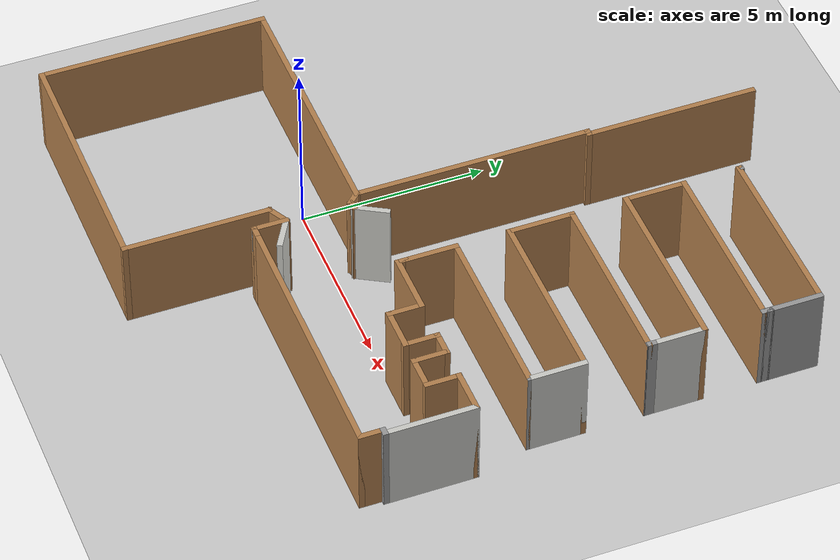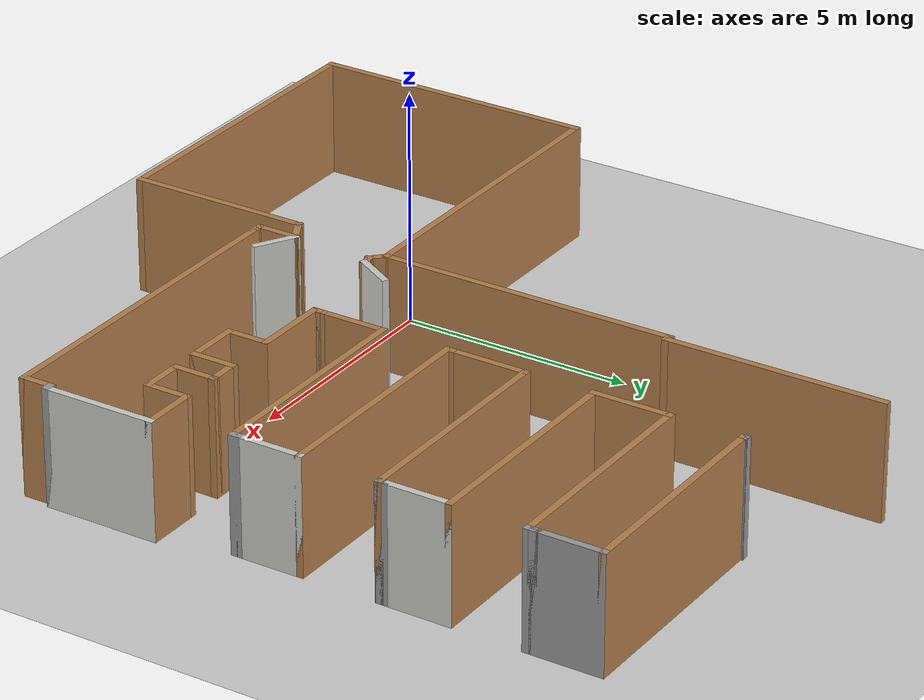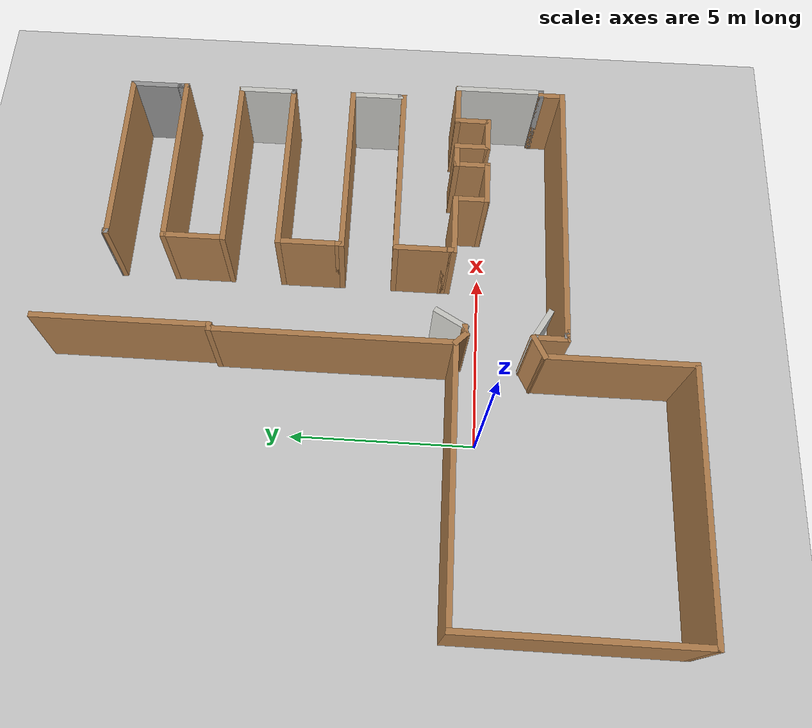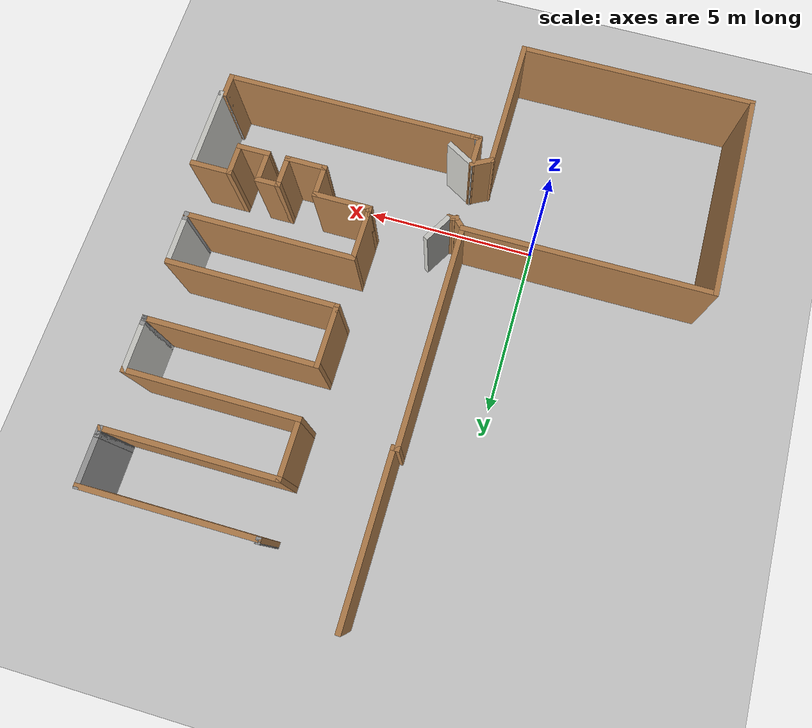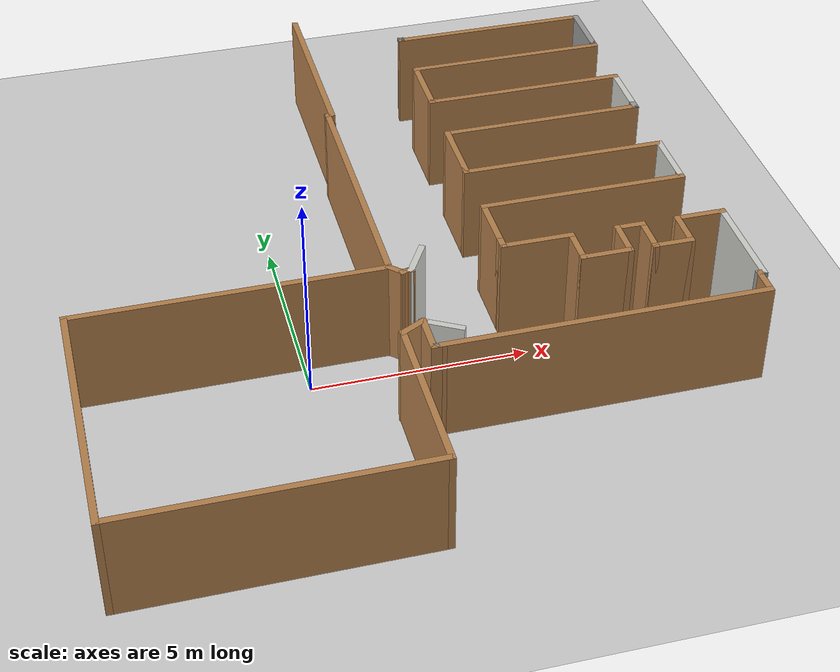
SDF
<sdf version="1.6">
 <world name="default">
  <model name="ground_plane">
   <static>1</static>
   <link name="link">
    <collision name="collision">
     <geometry><plane><normal>0 0 1</normal><size>100 100</size></plane></geometry>
     <surface>
      <contact><collide_bitmask>65535</collide_bitmask></contact>
      <friction><ode><mu>100</mu><mu2>50</mu2></ode></friction>
     </surface>
    </collision>
    <visual name="visual">
     <cast_shadows>0</cast_shadows>
     <geometry><plane><normal>0 0 1</normal><size>100 100</size></plane></geometry>
     <material>
      <script><uri>file://media/materials/scripts/gazebo.material</uri><name>Gazebo/Grey</name></script>
     </material>
    </visual>
   </link>
  </model>
  <model name="ecst_lab_v2">
   <pose>2.40126 7.41042 0 0 -0 -1.57079</pose>
   <link name="Wall_10">
    <collision name="Wall_10_Collision">
     <geometry><box><size>1.5 0.15 2.5</size></box></geometry>
     <pose>0 0 1.25 0 -0 0</pose>
    </collision>
    <visual name="Wall_10_Visual">
     <pose>0 0 1.25 0 -0 0</pose>
     <geometry><box><size>1.5 0.15 2.5</size></box></geometry>
     <material>
      <script><uri>file://media/materials/scripts/gazebo.material</uri><name>Gazebo/Grey</name></script>
      <ambient>1 1 1 1</ambient>
     </material>
     <meta><layer>0</layer></meta>
    </visual>
    <pose>-2.09801 7.10227 0 0 -0 0</pose>
   </link>
   <link name="Wall_11">
    <collision name="Wall_11_Collision">
     <geometry><box><size>0.15 0.15 2.5</size></box></geometry>
     <pose>0 0 1.25 0 -0 0</pose>
    </collision>
    <visual name="Wall_11_Visual">
     <pose>0 0 1.25 0 -0 0</pose>
     <geometry><box><size>0.15 0.15 2.5</size></box></geometry>
     <material>
      <script><uri>file://media/materials/scripts/gazebo.material</uri><name>Gazebo/Grey</name></script>
      <ambient>1 1 1 1</ambient>
     </material>
     <meta><layer>0</layer></meta>
    </visual>
    <pose>-1.42301 7.10227 0 0 -0 0</pose>
   </link>
   <link name="Wall_12">
    <collision name="Wall_12_Collision">
     <geometry><box><size>0.16 0.15 2.5</size></box></geometry>
     <pose>0 0 1.25 0 -0 0</pose>
    </collision>
    <visual name="Wall_12_Visual">
     <pose>0 0 1.25 0 -0 0</pose>
     <geometry><box><size>0.16 0.15 2.5</size></box></geometry>
     <material>
      <script><uri>file://media/materials/scripts/gazebo.material</uri><name>Gazebo/Grey</name></script>
      <ambient>1 1 1 1</ambient>
     </material>
     <meta><layer>0</layer></meta>
    </visual>
    <pose>-1.41801 7.10227 0 0 -0 0</pose>
   </link>
   <link name="Wall_13">
    <collision name="Wall_13_Collision">
     <geometry><box><size>0.16 0.15 2.5</size></box></geometry>
     <pose>0 0 1.25 0 -0 0</pose>
    </collision>
    <visual name="Wall_13_Visual">
     <pose>0 0 1.25 0 -0 0</pose>
     <geometry><box><size>0.16 0.15 2.5</size></box></geometry>
     <material>
      <script><uri>file://media/materials/scripts/gazebo.material</uri><name>Gazebo/Grey</name></script>
      <ambient>1 1 1 1</ambient>
     </material>
     <meta><layer>0</layer></meta>
    </visual>
    <pose>-1.40801 7.10227 0 0 -0 0</pose>
   </link>
   <link name="Wall_14">
    <collision name="Wall_14_Collision">
     <geometry><box><size>0.16 0.15 2.5</size></box></geometry>
     <pose>0 0 1.25 0 -0 0</pose>
    </collision>
    <visual name="Wall_14_Visual">
     <pose>0 0 1.25 0 -0 0</pose>
     <geometry><box><size>0.16 0.15 2.5</size></box></geometry>
     <material>
      <script><uri>file://media/materials/scripts/gazebo.material</uri><name>Gazebo/Grey</name></script>
      <ambient>1 1 1 1</ambient>
     </material>
     <meta><layer>0</layer></meta>
    </visual>
    <pose>-1.39801 7.10227 0 0 -0 0</pose>
   </link>
   <link name="Wall_15">
    <collision name="Wall_15_Collision">
     <geometry><box><size>0.16 0.15 2.5</size></box></geometry>
     <pose>0 0 1.25 0 -0 0</pose>
    </collision>
    <visual name="Wall_15_Visual">
     <pose>0 0 1.25 0 -0 0</pose>
     <geometry><box><size>0.16 0.15 2.5</size></box></geometry>
     <material>
      <script><uri>file://media/materials/scripts/gazebo.material</uri><name>Gazebo/Grey</name></script>
      <ambient>1 1 1 1</ambient>
     </material>
     <meta><layer>0</layer></meta>
    </visual>
    <pose>-1.38801 7.10227 0 0 -0 0</pose>
   </link>
   <link name="Wall_16">
    <collision name="Wall_16_Collision">
     <geometry><box><size>0.16 0.15 2.5</size></box></geometry>
     <pose>0 0 1.25 0 -0 0</pose>
    </collision>
    <visual name="Wall_16_Visual">
     <pose>0 0 1.25 0 -0 0</pose>
     <geometry><box><size>0.16 0.15 2.5</size></box></geometry>
     <material>
      <script><uri>file://media/materials/scripts/gazebo.material</uri><name>Gazebo/Grey</name></script>
      <ambient>1 1 1 1</ambient>
     </material>
     <meta><layer>0</layer></meta>
    </visual>
    <pose>-1.37801 7.10227 0 0 -0 0</pose>
   </link>
   <link name="Wall_17">
    <collision name="Wall_17_Collision">
     <geometry><box><size>0.16 0.15 2.5</size></box></geometry>
     <pose>0 0 1.25 0 -0 0</pose>
    </collision>
    <visual name="Wall_17_Visual">
     <pose>0 0 1.25 0 -0 0</pose>
     <geometry><box><size>0.16 0.15 2.5</size></box></geometry>
     <material>
      <script><uri>file://media/materials/scripts/gazebo.material</uri><name>Gazebo/Grey</name></script>
      <ambient>1 1 1 1</ambient>
     </material>
     <meta><layer>0</layer></meta>
    </visual>
    <pose>-1.36801 7.10227 0 0 -0 0</pose>
   </link>
   <link name="Wall_18">
    <collision name="Wall_18_Collision">
     <geometry><box><size>0.16 0.15 2.5</size></box></geometry>
     <pose>0 0 1.25 0 -0 0</pose>
    </collision>
    <visual name="Wall_18_Visual">
     <pose>0 0 1.25 0 -0 0</pose>
     <geometry><box><size>0.16 0.15 2.5</size></box></geometry>
     <material>
      <script><uri>file://media/materials/scripts/gazebo.material</uri><name>Gazebo/Grey</name></script>
      <ambient>1 1 1 1</ambient>
     </material>
     <meta><layer>0</layer></meta>
    </visual>
    <pose>-1.35801 7.10227 0 0 -0 0</pose>
   </link>
   <link name="Wall_19">
    <collision name="Wall_19_Collision">
     <geometry><box><size>0.16 0.15 2.5</size></box></geometry>
     <pose>0 0 1.25 0 -0 0</pose>
    </collision>
    <visual name="Wall_19_Visual">
     <pose>0 0 1.25 0 -0 0</pose>
     <geometry><box><size>0.16 0.15 2.5</size></box></geometry>
     <material>
      <script><uri>file://media/materials/scripts/gazebo.material</uri><name>Gazebo/Grey</name></script>
      <ambient>1 1 1 1</ambient>
     </material>
     <meta><layer>0</layer></meta>
    </visual>
    <pose>-1.34801 7.10227 0 0 -0 0</pose>
   </link>
   <link name="Wall_20">
    <collision name="Wall_20_Collision">
     <geometry><box><size>0.25 0.15 2.5</size></box></geometry>
     <pose>0 0 1.25 0 -0 0</pose>
    </collision>
    <visual name="Wall_20_Visual">
     <pose>0 0 1.25 0 -0 0</pose>
     <geometry><box><size>0.25 0.15 2.5</size></box></geometry>
     <material>
      <script><uri>file://media/materials/scripts/gazebo.material</uri><name>Gazebo/Grey</name></script>
      <ambient>1 1 1 1</ambient>
     </material>
     <meta><layer>0</layer></meta>
    </visual>
    <pose>-1.29301 7.10227 0 0 -0 0</pose>
   </link>
   <link name="Wall_21">
    <collision name="Wall_21_Collision">
     <geometry><box><size>5 0.15 2.5</size></box></geometry>
     <pose>0 0 1.25 0 -0 0</pose>
    </collision>
    <visual name="Wall_21_Visual">
     <pose>0 0 1.25 0 -0 0</pose>
     <geometry><box><size>5 0.15 2.5</size></box></geometry>
     <material>
      <script><uri>file://media/materials/scripts/gazebo.material</uri><name>Gazebo/Wood</name></script>
      <ambient>1 1 1 1</ambient>
     </material>
     <meta><layer>0</layer></meta>
    </visual>
    <pose>-1.24301 4.67727 0 0 -0 -1.5708</pose>
   </link>
   <link name="Wall_22">
    <collision name="Wall_22_Collision">
     <geometry><box><size>1.75 0.15 2.5</size></box></geometry>
     <pose>0 0 1.25 0 -0 0</pose>
    </collision>
    <visual name="Wall_22_Visual">
     <pose>0 0 1.25 0 -0 0</pose>
     <geometry><box><size>1.75 0.15 2.5</size></box></geometry>
     <material>
      <script><uri>file://media/materials/scripts/gazebo.material</uri><name>Gazebo/Wood</name></script>
      <ambient>1 1 1 1</ambient>
     </material>
     <meta><layer>0</layer></meta>
    </visual>
    <pose>-0.443013 2.25228 0 0 -0 0</pose>
   </link>
   <link name="Wall_23">
    <collision name="Wall_23_Collision">
     <geometry><box><size>5 0.15 2.5</size></box></geometry>
     <pose>0 0 1.25 0 -0 0</pose>
    </collision>
    <visual name="Wall_23_Visual">
     <pose>0 0 1.25 0 -0 0</pose>
     <geometry><box><size>5 0.15 2.5</size></box></geometry>
     <material>
      <script><uri>file://media/materials/scripts/gazebo.material</uri><name>Gazebo/Wood</name></script>
      <ambient>1 1 1 1</ambient>
     </material>
     <meta><layer>0</layer></meta>
    </visual>
    <pose>0.356987 4.67727 0 0 -0 1.5708</pose>
   </link>
   <link name="Wall_24">
    <collision name="Wall_24_Collision">
     <geometry><box><size>1.5 0.15 2.5</size></box></geometry>
     <pose>0 0 1.25 0 -0 0</pose>
    </collision>
    <visual name="Wall_24_Visual">
     <pose>0 0 1.25 0 -0 0</pose>
     <geometry><box><size>1.5 0.15 2.5</size></box></geometry>
     <material>
      <script><uri>file://media/materials/scripts/gazebo.material</uri><name>Gazebo/CeilingTiled</name></script>
      <ambient>1 1 1 1</ambient>
     </material>
     <meta><layer>0</layer></meta>
    </visual>
    <pose>1.03199 7.10227 0 0 -0 0</pose>
   </link>
   <link name="Wall_25">
    <collision name="Wall_25_Collision">
     <geometry><box><size>0.25 0.15 2.5</size></box></geometry>
     <pose>0 0 1.25 0 -0 0</pose>
    </collision>
    <visual name="Wall_25_Visual">
     <pose>0 0 1.25 0 -0 0</pose>
     <geometry><box><size>0.25 0.15 2.5</size></box></geometry>
     <material>
      <script><uri>file://media/materials/scripts/gazebo.material</uri><name>Gazebo/Grey</name></script>
      <ambient>1 1 1 1</ambient>
     </material>
     <meta><layer>0</layer></meta>
    </visual>
    <pose>1.75699 7.10227 0 0 -0 0</pose>
   </link>
   <link name="Wall_26">
    <collision name="Wall_26_Collision">
     <geometry><box><size>0.15 0.15 2.5</size></box></geometry>
     <pose>0 0 1.25 0 -0 0</pose>
    </collision>
    <visual name="Wall_26_Visual">
     <pose>0 0 1.25 0 -0 0</pose>
     <geometry><box><size>0.15 0.15 2.5</size></box></geometry>
     <material>
      <script><uri>file://media/materials/scripts/gazebo.material</uri><name>Gazebo/Grey</name></script>
      <ambient>1 1 1 1</ambient>
     </material>
     <meta><layer>0</layer></meta>
    </visual>
    <pose>1.80699 7.10227 0 0 -0 0</pose>
   </link>
   <link name="Wall_27">
    <collision name="Wall_27_Collision">
     <geometry><box><size>0.16 0.15 2.5</size></box></geometry>
     <pose>0 0 1.25 0 -0 0</pose>
    </collision>
    <visual name="Wall_27_Visual">
     <pose>0 0 1.25 0 -0 0</pose>
     <geometry><box><size>0.16 0.15 2.5</size></box></geometry>
     <material>
      <script><uri>file://media/materials/scripts/gazebo.material</uri><name>Gazebo/Grey</name></script>
      <ambient>1 1 1 1</ambient>
     </material>
     <meta><layer>0</layer></meta>
    </visual>
    <pose>1.81199 7.10227 0 0 -0 0</pose>
   </link>
   <link name="Wall_28">
    <collision name="Wall_28_Collision">
     <geometry><box><size>0.16 0.15 2.5</size></box></geometry>
     <pose>0 0 1.25 0 -0 0</pose>
    </collision>
    <visual name="Wall_28_Visual">
     <pose>0 0 1.25 0 -0 0</pose>
     <geometry><box><size>0.16 0.15 2.5</size></box></geometry>
     <material>
      <script><uri>file://media/materials/scripts/gazebo.material</uri><name>Gazebo/Grey</name></script>
      <ambient>1 1 1 1</ambient>
     </material>
     <meta><layer>0</layer></meta>
    </visual>
    <pose>1.82199 7.10227 0 0 -0 0</pose>
   </link>
   <link name="Wall_29">
    <collision name="Wall_29_Collision">
     <geometry><box><size>0.16 0.15 2.5</size></box></geometry>
     <pose>0 0 1.25 0 -0 0</pose>
    </collision>
    <visual name="Wall_29_Visual">
     <pose>0 0 1.25 0 -0 0</pose>
     <geometry><box><size>0.16 0.15 2.5</size></box></geometry>
     <material>
      <script><uri>file://media/materials/scripts/gazebo.material</uri><name>Gazebo/Grey</name></script>
      <ambient>1 1 1 1</ambient>
     </material>
     <meta><layer>0</layer></meta>
    </visual>
    <pose>1.82199 7.10227 0 0 -0 3.14159</pose>
   </link>
   <link name="Wall_3">
    <collision name="Wall_3_Collision">
     <geometry><box><size>0.15 0.15 2.5</size></box></geometry>
     <pose>0 0 1.25 0 -0 0</pose>
    </collision>
    <visual name="Wall_3_Visual">
     <pose>0 0 1.25 0 -0 0</pose>
     <geometry><box><size>0.15 0.15 2.5</size></box></geometry>
     <material>
      <script><uri>file://media/materials/scripts/gazebo.material</uri><name>Gazebo/Grey</name></script>
      <ambient>1 1 1 1</ambient>
     </material>
     <meta><layer>0</layer></meta>
    </visual>
    <pose>-2.81301 2.25228 0 0 -0 0</pose>
   </link>
   <link name="Wall_30">
    <collision name="Wall_30_Collision">
     <geometry><box><size>0.16 0.15 2.5</size></box></geometry>
     <pose>0 0 1.25 0 -0 0</pose>
    </collision>
    <visual name="Wall_30_Visual">
     <pose>0 0 1.25 0 -0 0</pose>
     <geometry><box><size>0.16 0.15 2.5</size></box></geometry>
     <material>
      <script><uri>file://media/materials/scripts/gazebo.material</uri><name>Gazebo/Grey</name></script>
      <ambient>1 1 1 1</ambient>
     </material>
     <meta><layer>0</layer></meta>
    </visual>
    <pose>1.82199 7.10227 0 0 -0 0</pose>
   </link>
   <link name="Wall_31">
    <collision name="Wall_31_Collision">
     <geometry><box><size>0.16 0.15 2.5</size></box></geometry>
     <pose>0 0 1.25 0 -0 0</pose>
    </collision>
    <visual name="Wall_31_Visual">
     <pose>0 0 1.25 0 -0 0</pose>
     <geometry><box><size>0.16 0.15 2.5</size></box></geometry>
     <material>
      <script><uri>file://media/materials/scripts/gazebo.material</uri><name>Gazebo/Grey</name></script>
      <ambient>1 1 1 1</ambient>
     </material>
     <meta><layer>0</layer></meta>
    </visual>
    <pose>1.83199 7.10227 0 0 -0 0</pose>
   </link>
   <link name="Wall_32">
    <collision name="Wall_32_Collision">
     <geometry><box><size>0.16 0.15 2.5</size></box></geometry>
     <pose>0 0 1.25 0 -0 0</pose>
    </collision>
    <visual name="Wall_32_Visual">
     <pose>0 0 1.25 0 -0 0</pose>
     <geometry><box><size>0.16 0.15 2.5</size></box></geometry>
     <material>
      <script><uri>file://media/materials/scripts/gazebo.material</uri><name>Gazebo/Grey</name></script>
      <ambient>1 1 1 1</ambient>
     </material>
     <meta><layer>0</layer></meta>
    </visual>
    <pose>1.83199 7.10227 0 0 -0 3.14159</pose>
   </link>
   <link name="Wall_33">
    <collision name="Wall_33_Collision">
     <geometry><box><size>0.16 0.15 2.5</size></box></geometry>
     <pose>0 0 1.25 0 -0 0</pose>
    </collision>
    <visual name="Wall_33_Visual">
     <pose>0 0 1.25 0 -0 0</pose>
     <geometry><box><size>0.16 0.15 2.5</size></box></geometry>
     <material>
      <script><uri>file://media/materials/scripts/gazebo.material</uri><name>Gazebo/Grey</name></script>
      <ambient>1 1 1 1</ambient>
     </material>
     <meta><layer>0</layer></meta>
    </visual>
    <pose>1.83199 7.10227 0 0 -0 0</pose>
   </link>
   <link name="Wall_34">
    <collision name="Wall_34_Collision">
     <geometry><box><size>5 0.15 2.5</size></box></geometry>
     <pose>0 0 1.25 0 -0 0</pose>
    </collision>
    <visual name="Wall_34_Visual">
     <pose>0 0 1.25 0 -0 0</pose>
     <geometry><box><size>5 0.15 2.5</size></box></geometry>
     <material>
      <script><uri>file://media/materials/scripts/gazebo.material</uri><name>Gazebo/Wood</name></script>
      <ambient>1 1 1 1</ambient>
     </material>
     <meta><layer>0</layer></meta>
    </visual>
    <pose>1.83699 4.67727 0 0 -0 -1.5708</pose>
   </link>
   <link name="Wall_35">
    <collision name="Wall_35_Collision">
     <geometry><box><size>1.75 0.15 2.5</size></box></geometry>
     <pose>0 0 1.25 0 -0 0</pose>
    </collision>
    <visual name="Wall_35_Visual">
     <pose>0 0 1.25 0 -0 0</pose>
     <geometry><box><size>1.75 0.15 2.5</size></box></geometry>
     <material>
      <script><uri>file://media/materials/scripts/gazebo.material</uri><name>Gazebo/Wood</name></script>
      <ambient>1 1 1 1</ambient>
     </material>
     <meta><layer>0</layer></meta>
    </visual>
    <pose>2.63699 2.25228 0 0 -0 0</pose>
   </link>
   <link name="Wall_36">
    <collision name="Wall_36_Collision">
     <geometry><box><size>0.25 0.15 2.5</size></box></geometry>
     <pose>0 0 1.25 0 -0 0</pose>
    </collision>
    <visual name="Wall_36_Visual">
     <pose>0 0 1.25 0 -0 0</pose>
     <geometry><box><size>0.25 0.15 2.5</size></box></geometry>
     <material>
      <script><uri>file://media/materials/scripts/gazebo.material</uri><name>Gazebo/Wood</name></script>
      <ambient>1 1 1 1</ambient>
     </material>
     <meta><layer>0</layer></meta>
    </visual>
    <pose>3.48699 2.25228 0 0 -0 0</pose>
   </link>
   <link name="Wall_37">
    <collision name="Wall_37_Collision">
     <geometry><box><size>5 0.15 2.5</size></box></geometry>
     <pose>0 0 1.25 0 -0 0</pose>
    </collision>
    <visual name="Wall_37_Visual">
     <pose>0 0 1.25 0 -0 0</pose>
     <geometry><box><size>5 0.15 2.5</size></box></geometry>
     <material>
      <script><uri>file://media/materials/scripts/gazebo.material</uri><name>Gazebo/Wood</name></script>
      <ambient>1 1 1 1</ambient>
     </material>
     <meta><layer>0</layer></meta>
    </visual>
    <pose>3.53699 4.67727 0 0 -0 1.5708</pose>
   </link>
   <link name="Wall_38">
    <collision name="Wall_38_Collision">
     <geometry><box><size>1.5 0.15 2.5</size></box></geometry>
     <pose>0 0 1.25 0 -0 0</pose>
    </collision>
    <visual name="Wall_38_Visual">
     <pose>0 0 1.25 0 -0 0</pose>
     <geometry><box><size>1.5 0.15 2.5</size></box></geometry>
     <material>
      <script><uri>file://media/materials/scripts/gazebo.material</uri><name>Gazebo/CeilingTiled</name></script>
      <ambient>1 1 1 1</ambient>
     </material>
     <meta><layer>0</layer></meta>
    </visual>
    <pose>4.21199 7.10227 0 0 -0 0</pose>
   </link>
   <link name="Wall_39">
    <collision name="Wall_39_Collision">
     <geometry><box><size>0.25 0.15 2.5</size></box></geometry>
     <pose>0 0 1.25 0 -0 0</pose>
    </collision>
    <visual name="Wall_39_Visual">
     <pose>0 0 1.25 0 -0 0</pose>
     <geometry><box><size>0.25 0.15 2.5</size></box></geometry>
     <material>
      <script><uri>file://media/materials/scripts/gazebo.material</uri><name>Gazebo/Grey</name></script>
      <ambient>1 1 1 1</ambient>
     </material>
     <meta><layer>0</layer></meta>
    </visual>
    <pose>4.93699 7.10227 0 0 -0 0</pose>
   </link>
   <link name="Wall_4">
    <collision name="Wall_4_Collision">
     <geometry><box><size>0.15 0.15 2.5</size></box></geometry>
     <pose>0 0 1.25 0 -0 0</pose>
    </collision>
    <visual name="Wall_4_Visual">
     <pose>0 0 1.25 0 -0 0</pose>
     <geometry><box><size>0.15 0.15 2.5</size></box></geometry>
     <material>
      <script><uri>file://media/materials/scripts/gazebo.material</uri><name>Gazebo/Grey</name></script>
      <ambient>1 1 1 1</ambient>
     </material>
     <meta><layer>0</layer></meta>
    </visual>
    <pose>-2.81301 2.25228 0 0 -0 0</pose>
   </link>
   <link name="Wall_40">
    <collision name="Wall_40_Collision">
     <geometry><box><size>5 0.15 2.5</size></box></geometry>
     <pose>0 0 1.25 0 -0 0</pose>
    </collision>
    <visual name="Wall_40_Visual">
     <pose>0 0 1.25 0 -0 0</pose>
     <geometry><box><size>5 0.15 2.5</size></box></geometry>
     <material>
      <script><uri>file://media/materials/scripts/gazebo.material</uri><name>Gazebo/Wood</name></script>
      <ambient>1 1 1 1</ambient>
     </material>
     <meta><layer>0</layer></meta>
    </visual>
    <pose>4.98699 4.67727 0 0 -0 -1.5708</pose>
   </link>
   <link name="Wall_41">
    <collision name="Wall_41_Collision">
     <geometry><box><size>1.5 0.15 2.5</size></box></geometry>
     <pose>0 0 1.25 0 -0 0</pose>
    </collision>
    <visual name="Wall_41_Visual">
     <pose>0 0 1.25 0 -0 0</pose>
     <geometry><box><size>1.5 0.15 2.5</size></box></geometry>
     <material>
      <script><uri>file://media/materials/scripts/gazebo.material</uri><name>Gazebo/Wood</name></script>
      <ambient>1 1 1 1</ambient>
     </material>
     <meta><layer>0</layer></meta>
    </visual>
    <pose>5.66199 2.25228 0 0 -0 0</pose>
   </link>
   <link name="Wall_42">
    <collision name="Wall_42_Collision">
     <geometry><box><size>0.25 0.15 2.5</size></box></geometry>
     <pose>0 0 1.25 0 -0 0</pose>
    </collision>
    <visual name="Wall_42_Visual">
     <pose>0 0 1.25 0 -0 0</pose>
     <geometry><box><size>0.25 0.15 2.5</size></box></geometry>
     <material>
      <script><uri>file://media/materials/scripts/gazebo.material</uri><name>Gazebo/Wood</name></script>
      <ambient>1 1 1 1</ambient>
     </material>
     <meta><layer>0</layer></meta>
    </visual>
    <pose>6.38699 2.25228 0 0 -0 0</pose>
   </link>
   <link name="Wall_43">
    <collision name="Wall_43_Collision">
     <geometry><box><size>0.25 0.15 2.5</size></box></geometry>
     <pose>0 0 1.25 0 -0 0</pose>
    </collision>
    <visual name="Wall_43_Visual">
     <pose>0 0 1.25 0 -0 0</pose>
     <geometry><box><size>0.25 0.15 2.5</size></box></geometry>
     <material>
      <script><uri>file://media/materials/scripts/gazebo.material</uri><name>Gazebo/Wood</name></script>
      <ambient>1 1 1 1</ambient>
     </material>
     <meta><layer>0</layer></meta>
    </visual>
    <pose>6.48699 2.25228 0 0 -0 0</pose>
   </link>
   <link name="Wall_44">
    <collision name="Wall_44_Collision">
     <geometry><box><size>1.75 0.15 2.5</size></box></geometry>
     <pose>0 0 1.25 0 -0 0</pose>
    </collision>
    <visual name="Wall_44_Visual">
     <pose>0 0 1.25 0 -0 0</pose>
     <geometry><box><size>1.75 0.15 2.5</size></box></geometry>
     <material>
      <script><uri>file://media/materials/scripts/gazebo.material</uri><name>Gazebo/Wood</name></script>
      <ambient>1 1 1 1</ambient>
     </material>
     <meta><layer>0</layer></meta>
    </visual>
    <pose>6.53699 3.05227 0 0 -0 1.5708</pose>
   </link>
   <link name="Wall_45">
    <collision name="Wall_45_Collision">
     <geometry><box><size>1 0.15 2.5</size></box></geometry>
     <pose>0 0 1.25 0 -0 0</pose>
    </collision>
    <visual name="Wall_45_Visual">
     <pose>0 0 1.25 0 -0 0</pose>
     <geometry><box><size>1 0.15 2.5</size></box></geometry>
     <material>
      <script><uri>file://media/materials/scripts/gazebo.material</uri><name>Gazebo/Wood</name></script>
      <ambient>1 1 1 1</ambient>
     </material>
     <meta><layer>0</layer></meta>
    </visual>
    <pose>6.96199 3.85228 0 0 -0 0</pose>
   </link>
   <link name="Wall_46">
    <collision name="Wall_46_Collision">
     <geometry><box><size>1.25 0.15 2.5</size></box></geometry>
     <pose>0 0 1.25 0 -0 0</pose>
    </collision>
    <visual name="Wall_46_Visual">
     <pose>0 0 1.25 0 -0 0</pose>
     <geometry><box><size>1.25 0.15 2.5</size></box></geometry>
     <material>
      <script><uri>file://media/materials/scripts/gazebo.material</uri><name>Gazebo/Wood</name></script>
      <ambient>1 1 1 1</ambient>
     </material>
     <meta><layer>0</layer></meta>
    </visual>
    <pose>7.38699 4.40228 0 0 -0 1.5708</pose>
   </link>
   <link name="Wall_47">
    <collision name="Wall_47_Collision">
     <geometry><box><size>1 0.15 2.5</size></box></geometry>
     <pose>0 0 1.25 0 -0 0</pose>
    </collision>
    <visual name="Wall_47_Visual">
     <pose>0 0 1.25 0 -0 0</pose>
     <geometry><box><size>1 0.15 2.5</size></box></geometry>
     <material>
      <script><uri>file://media/materials/scripts/gazebo.material</uri><name>Gazebo/Wood</name></script>
      <ambient>1 1 1 1</ambient>
     </material>
     <meta><layer>0</layer></meta>
    </visual>
    <pose>6.96199 4.95228 0 0 -0 3.14159</pose>
   </link>
   <link name="Wall_48">
    <collision name="Wall_48_Collision">
     <geometry><box><size>0.75 0.15 2.5</size></box></geometry>
     <pose>0 0 1.25 0 -0 0</pose>
    </collision>
    <visual name="Wall_48_Visual">
     <pose>0 0 1.25 0 -0 0</pose>
     <geometry><box><size>0.75 0.15 2.5</size></box></geometry>
     <material>
      <script><uri>file://media/materials/scripts/gazebo.material</uri><name>Gazebo/Wood</name></script>
      <ambient>1 1 1 1</ambient>
     </material>
     <meta><layer>0</layer></meta>
    </visual>
    <pose>6.53699 5.25228 0 0 -0 1.5708</pose>
   </link>
   <link name="Wall_49">
    <collision name="Wall_49_Collision">
     <geometry><box><size>1 0.15 2.5</size></box></geometry>
     <pose>0 0 1.25 0 -0 0</pose>
    </collision>
    <visual name="Wall_49_Visual">
     <pose>0 0 1.25 0 -0 0</pose>
     <geometry><box><size>1 0.15 2.5</size></box></geometry>
     <material>
      <script><uri>file://media/materials/scripts/gazebo.material</uri><name>Gazebo/Wood</name></script>
      <ambient>1 1 1 1</ambient>
     </material>
     <meta><layer>0</layer></meta>
    </visual>
    <pose>6.96199 5.55227 0 0 -0 0</pose>
   </link>
   <link name="Wall_5">
    <collision name="Wall_5_Collision">
     <geometry><box><size>0.16 0.15 2.5</size></box></geometry>
     <pose>0 0 1.25 0 -0 0</pose>
    </collision>
    <visual name="Wall_5_Visual">
     <pose>0 0 1.25 0 -0 0</pose>
     <geometry><box><size>0.16 0.15 2.5</size></box></geometry>
     <material>
      <script><uri>file://media/materials/scripts/gazebo.material</uri><name>Gazebo/Grey</name></script>
      <ambient>1 1 1 1</ambient>
     </material>
     <meta><layer>0</layer></meta>
    </visual>
    <pose>-2.80801 2.25228 0 0 -0 0</pose>
   </link>
   <link name="Wall_50">
    <collision name="Wall_50_Collision">
     <geometry><box><size>1 0.15 2.5</size></box></geometry>
     <pose>0 0 1.25 0 -0 0</pose>
    </collision>
    <visual name="Wall_50_Visual">
     <pose>0 0 1.25 0 -0 0</pose>
     <geometry><box><size>1 0.15 2.5</size></box></geometry>
     <material>
      <script><uri>file://media/materials/scripts/gazebo.material</uri><name>Gazebo/Wood</name></script>
      <ambient>1 1 1 1</ambient>
     </material>
     <meta><layer>0</layer></meta>
    </visual>
    <pose>7.38699 5.97727 0 0 -0 1.5708</pose>
   </link>
   <link name="Wall_51">
    <collision name="Wall_51_Collision">
     <geometry><box><size>1 0.15 2.5</size></box></geometry>
     <pose>0 0 1.25 0 -0 0</pose>
    </collision>
    <visual name="Wall_51_Visual">
     <pose>0 0 1.25 0 -0 0</pose>
     <geometry><box><size>1 0.15 2.5</size></box></geometry>
     <material>
      <script><uri>file://media/materials/scripts/gazebo.material</uri><name>Gazebo/Wood</name></script>
      <ambient>1 1 1 1</ambient>
     </material>
     <meta><layer>0</layer></meta>
    </visual>
    <pose>6.96199 6.40228 0 0 -0 3.14159</pose>
   </link>
   <link name="Wall_52">
    <collision name="Wall_52_Collision">
     <geometry><box><size>1.25 0.15 2.5</size></box></geometry>
     <pose>0 0 1.25 0 -0 0</pose>
    </collision>
    <visual name="Wall_52_Visual">
     <pose>0 0 1.25 0 -0 0</pose>
     <geometry><box><size>1.25 0.15 2.5</size></box></geometry>
     <material>
      <script><uri>file://media/materials/scripts/gazebo.material</uri><name>Gazebo/Wood</name></script>
      <ambient>1 1 1 1</ambient>
     </material>
     <meta><layer>0</layer></meta>
    </visual>
    <pose>6.53699 6.95228 0 0 -0 1.5708</pose>
   </link>
   <link name="Wall_53">
    <collision name="Wall_53_Collision">
     <geometry><box><size>2.5 0.15 2.5</size></box></geometry>
     <pose>0 0 1.25 0 -0 0</pose>
    </collision>
    <visual name="Wall_53_Visual">
     <pose>0 0 1.25 0 -0 0</pose>
     <geometry><box><size>2.5 0.15 2.5</size></box></geometry>
     <material>
      <script><uri>file://media/materials/scripts/gazebo.material</uri><name>Gazebo/CeilingTiled</name></script>
      <ambient>1 1 1 1</ambient>
     </material>
     <meta><layer>0</layer></meta>
    </visual>
    <pose>7.71199 7.50228 0 0 -0 0</pose>
   </link>
   <link name="Wall_54">
    <collision name="Wall_54_Collision">
     <geometry><box><size>0.25 0.15 2.5</size></box></geometry>
     <pose>0 0 1.25 0 -0 0</pose>
    </collision>
    <visual name="Wall_54_Visual">
     <pose>0 0 1.25 0 -0 0</pose>
     <geometry><box><size>0.25 0.15 2.5</size></box></geometry>
     <material>
      <script><uri>file://media/materials/scripts/gazebo.material</uri><name>Gazebo/Grey</name></script>
      <ambient>1 1 1 1</ambient>
     </material>
     <meta><layer>0</layer></meta>
    </visual>
    <pose>8.88699 7.45228 0 0 -0 -1.5708</pose>
   </link>
   <link name="Wall_55">
    <collision name="Wall_55_Collision">
     <geometry><box><size>0.75 0.15 2.5</size></box></geometry>
     <pose>0 0 1.25 0 -0 0</pose>
    </collision>
    <visual name="Wall_55_Visual">
     <pose>0 0 1.25 0 -0 0</pose>
     <geometry><box><size>0.75 0.15 2.5</size></box></geometry>
     <material>
      <script><uri>file://media/materials/scripts/gazebo.material</uri><name>Gazebo/Wood</name></script>
      <ambient>1 1 1 1</ambient>
     </material>
     <meta><layer>0</layer></meta>
    </visual>
    <pose>9.18699 7.40228 0 0 -0 0</pose>
   </link>
   <link name="Wall_56">
    <collision name="Wall_56_Collision">
     <geometry><box><size>7.5 0.15 2.5</size></box></geometry>
     <pose>0 0 1.25 0 -0 0</pose>
    </collision>
    <visual name="Wall_56_Visual">
     <pose>0 0 1.25 0 -0 0</pose>
     <geometry><box><size>7.5 0.15 2.5</size></box></geometry>
     <material>
      <script><uri>file://media/materials/scripts/gazebo.material</uri><name>Gazebo/Wood</name></script>
      <ambient>1 1 1 1</ambient>
     </material>
     <meta><layer>0</layer></meta>
    </visual>
    <pose>9.48699 3.72728 0 0 -0 -1.5708</pose>
   </link>
   <link name="Wall_57">
    <collision name="Wall_57_Collision">
     <geometry><box><size>0.25 0.15 2.5</size></box></geometry>
     <pose>0 0 1.25 0 -0 0</pose>
    </collision>
    <visual name="Wall_57_Visual">
     <pose>0 0 1.25 0 -0 0</pose>
     <geometry><box><size>0.25 0.15 2.5</size></box></geometry>
     <material>
      <script><uri>file://media/materials/scripts/gazebo.material</uri><name>Gazebo/Wood</name></script>
      <ambient>1 1 1 1</ambient>
     </material>
     <meta><layer>0</layer></meta>
    </visual>
    <pose>9.48699 0.002275 0 0 -0 -1.5708</pose>
   </link>
   <link name="Wall_58">
    <collision name="Wall_58_Collision">
     <geometry><box><size>0.15 0.15 2.5</size></box></geometry>
     <pose>0 0 1.25 0 -0 0</pose>
    </collision>
    <visual name="Wall_58_Visual">
     <pose>0 0 1.25 0 -0 0</pose>
     <geometry><box><size>0.15 0.15 2.5</size></box></geometry>
     <material>
      <script><uri>file://media/materials/scripts/gazebo.material</uri><name>Gazebo/Grey</name></script>
      <ambient>1 1 1 1</ambient>
     </material>
     <meta><layer>0</layer></meta>
    </visual>
    <pose>9.48699 -0.047725 0 0 -0 0</pose>
   </link>
   <link name="Wall_59">
    <collision name="Wall_59_Collision">
     <geometry><box><size>0.25 0.15 2.5</size></box></geometry>
     <pose>0 0 1.25 0 -0 0</pose>
    </collision>
    <visual name="Wall_59_Visual">
     <pose>0 0 1.25 0 -0 0</pose>
     <geometry><box><size>0.25 0.15 2.5</size></box></geometry>
     <material>
      <script><uri>file://media/materials/scripts/gazebo.material</uri><name>Gazebo/Wood</name></script>
      <ambient>1 1 1 1</ambient>
     </material>
     <meta><layer>0</layer></meta>
    </visual>
    <pose>9.48699 -0.097725 0 0 -0 -1.5708</pose>
   </link>
   <link name="Wall_6">
    <collision name="Wall_6_Collision">
     <geometry><box><size>0.16 0.15 2.5</size></box></geometry>
     <pose>0 0 1.25 0 -0 0</pose>
    </collision>
    <visual name="Wall_6_Visual">
     <pose>0 0 1.25 0 -0 0</pose>
     <geometry><box><size>0.16 0.15 2.5</size></box></geometry>
     <material>
      <script><uri>file://media/materials/scripts/gazebo.material</uri><name>Gazebo/Grey</name></script>
      <ambient>1 1 1 1</ambient>
     </material>
     <meta><layer>0</layer></meta>
    </visual>
    <pose>-2.79801 2.25228 0 0 -0 0</pose>
   </link>
   <link name="Wall_60">
    <collision name="Wall_60_Collision">
     <geometry><box><size>1 0.15 2.5</size></box></geometry>
     <pose>0 0 1.25 0 -0 0</pose>
    </collision>
    <visual name="Wall_60_Visual">
     <pose>0 0 1.25 0 -0 0</pose>
     <geometry><box><size>1 0.15 2.5</size></box></geometry>
     <material>
      <script><uri>file://media/materials/scripts/gazebo.material</uri><name>Gazebo/Wood</name></script>
      <ambient>1 1 1 1</ambient>
     </material>
     <meta><layer>0</layer></meta>
    </visual>
    <pose>9.06199 -0.147725 0 0 -0 3.14159</pose>
   </link>
   <link name="Wall_61">
    <collision name="Wall_61_Collision">
     <geometry><box><size>1 0.15 2.5</size></box></geometry>
     <pose>0 0 1.25 0 -0 0</pose>
    </collision>
    <visual name="Wall_61_Visual">
     <pose>0 0 1.25 0 -0 0</pose>
     <geometry><box><size>1 0.15 2.5</size></box></geometry>
     <material>
      <script><uri>file://media/materials/scripts/gazebo.material</uri><name>Gazebo/CeilingTiled</name></script>
      <ambient>1 1 1 1</ambient>
     </material>
     <meta><layer>0</layer></meta>
    </visual>
    <pose>8.84949 0.220335 0 0 -0 1.0472</pose>
   </link>
   <link name="Wall_63">
    <collision name="Wall_63_Collision">
     <geometry><box><size>1 0.15 2.5</size></box></geometry>
     <pose>0 0 1.25 0 -0 0</pose>
    </collision>
    <visual name="Wall_63_Visual">
     <pose>0 0 1.25 0 -0 0</pose>
     <geometry><box><size>1 0.15 2.5</size></box></geometry>
     <material>
      <script><uri>file://media/materials/scripts/gazebo.material</uri><name>Gazebo/CeilingTiled</name></script>
      <ambient>1 1 1 1</ambient>
     </material>
     <meta><layer>0</layer></meta>
    </visual>
    <pose>6.50697 0.254306 0 0 -0 -0.523599</pose>
   </link>
   <link name="Wall_64">
    <collision name="Wall_64_Collision">
     <geometry><box><size>0.25 0.15 2.5</size></box></geometry>
     <pose>0 0 1.25 0 -0 0</pose>
    </collision>
    <visual name="Wall_64_Visual">
     <pose>0 0 1.25 0 -0 0</pose>
     <geometry><box><size>0.25 0.15 2.5</size></box></geometry>
     <material>
      <script><uri>file://media/materials/scripts/gazebo.material</uri><name>Gazebo/Wood</name></script>
      <ambient>1 1 1 1</ambient>
     </material>
     <meta><layer>0</layer></meta>
    </visual>
    <pose>6.87503 -0.008194 0 0 -0 -1.5708</pose>
   </link>
   <link name="Wall_65">
    <collision name="Wall_65_Collision">
     <geometry><box><size>0.25 0.15 2.5</size></box></geometry>
     <pose>0 0 1.25 0 -0 0</pose>
    </collision>
    <visual name="Wall_65_Visual">
     <pose>0 0 1.25 0 -0 0</pose>
     <geometry><box><size>0.25 0.15 2.5</size></box></geometry>
     <material>
      <script><uri>file://media/materials/scripts/gazebo.material</uri><name>Gazebo/Wood</name></script>
      <ambient>1 1 1 1</ambient>
     </material>
     <meta><layer>0</layer></meta>
    </visual>
    <pose>6.88797 -0.106491 0 0 -0 -1.309</pose>
   </link>
   <link name="Wall_66">
    <collision name="Wall_66_Collision">
     <geometry><box><size>0.5 0.15 2.5</size></box></geometry>
     <pose>0 0 1.25 0 -0 0</pose>
    </collision>
    <visual name="Wall_66_Visual">
     <pose>0 0 1.25 0 -0 0</pose>
     <geometry><box><size>0.5 0.15 2.5</size></box></geometry>
     <material>
      <script><uri>file://media/materials/scripts/gazebo.material</uri><name>Gazebo/Wood</name></script>
      <ambient>1 1 1 1</ambient>
     </material>
     <meta><layer>0</layer></meta>
    </visual>
    <pose>6.77717 -0.278531 0 0 -0 -2.35619</pose>
   </link>
   <link name="Wall_67">
    <collision name="Wall_67_Collision">
     <geometry><box><size>7.25 0.15 2.5</size></box></geometry>
     <pose>0 0 1.25 0 -0 0</pose>
    </collision>
    <visual name="Wall_67_Visual">
     <pose>0 0 1.25 0 -0 0</pose>
     <geometry><box><size>7.25 0.15 2.5</size></box></geometry>
     <material>
      <script><uri>file://media/materials/scripts/gazebo.material</uri><name>Gazebo/Wood</name></script>
      <ambient>1 1 1 1</ambient>
     </material>
     <meta><layer>0</layer></meta>
    </visual>
    <pose>6.65343 -3.95227 0 0 -0 -1.5708</pose>
   </link>
   <link name="Wall_68">
    <collision name="Wall_68_Collision">
     <geometry><box><size>6.25 0.15 2.5</size></box></geometry>
     <pose>0 0 1.25 0 -0 0</pose>
    </collision>
    <visual name="Wall_68_Visual">
     <pose>0 0 1.25 0 -0 0</pose>
     <geometry><box><size>6.25 0.15 2.5</size></box></geometry>
     <material>
      <script><uri>file://media/materials/scripts/gazebo.material</uri><name>Gazebo/Wood</name></script>
      <ambient>1 1 1 1</ambient>
     </material>
     <meta><layer>0</layer></meta>
    </visual>
    <pose>9.70343 -7.50227 0 0 -0 0</pose>
   </link>
   <link name="Wall_69">
    <collision name="Wall_69_Collision">
     <geometry><box><size>7 0.15 2.5</size></box></geometry>
     <pose>0 0 1.25 0 -0 0</pose>
    </collision>
    <visual name="Wall_69_Visual">
     <pose>0 0 1.25 0 -0 0</pose>
     <geometry><box><size>7 0.15 2.5</size></box></geometry>
     <material>
      <script><uri>file://media/materials/scripts/gazebo.material</uri><name>Gazebo/Wood</name></script>
      <ambient>1 1 1 1</ambient>
     </material>
     <meta><layer>0</layer></meta>
    </visual>
    <pose>12.7534 -4.07727 0 0 -0 1.5708</pose>
   </link>
   <link name="Wall_7">
    <collision name="Wall_7_Collision">
     <geometry><box><size>0.16 0.15 2.5</size></box></geometry>
     <pose>0 0 1.25 0 -0 0</pose>
    </collision>
    <visual name="Wall_7_Visual">
     <pose>0 0 1.25 0 -0 0</pose>
     <geometry><box><size>0.16 0.15 2.5</size></box></geometry>
     <material>
      <script><uri>file://media/materials/scripts/gazebo.material</uri><name>Gazebo/Grey</name></script>
      <ambient>1 1 1 1</ambient>
     </material>
     <meta><layer>0</layer></meta>
    </visual>
    <pose>-2.78801 2.25228 0 0 -0 0</pose>
   </link>
   <link name="Wall_70">
    <collision name="Wall_70_Collision">
     <geometry><box><size>4 0.15 2.5</size></box></geometry>
     <pose>0 0 1.25 0 -0 0</pose>
    </collision>
    <visual name="Wall_70_Visual">
     <pose>0 0 1.25 0 -0 0</pose>
     <geometry><box><size>4 0.15 2.5</size></box></geometry>
     <material>
      <script><uri>file://media/materials/scripts/gazebo.material</uri><name>Gazebo/Wood</name></script>
      <ambient>1 1 1 1</ambient>
     </material>
     <meta><layer>0</layer></meta>
    </visual>
    <pose>10.8284 -0.652274 0 0 -0 3.14159</pose>
   </link>
   <link name="Wall_71">
    <collision name="Wall_71_Collision">
     <geometry><box><size>0.720579 0.15 2.5</size></box></geometry>
     <pose>0 0 1.25 0 -0 0</pose>
    </collision>
    <visual name="Wall_71_Visual">
     <pose>0 0 1.25 0 -0 0</pose>
     <geometry><box><size>0.720579 0.15 2.5</size></box></geometry>
     <material>
      <script><uri>file://media/materials/scripts/gazebo.material</uri><name>Gazebo/Wood</name></script>
      <ambient>1 1 1 1</ambient>
     </material>
     <meta><layer>0</layer></meta>
    </visual>
    <pose>8.77021 -0.4 0 0 -0 2.05665</pose>
   </link>
   <link name="Wall_73">
    <collision name="Wall_73_Collision">
     <geometry><box><size>6.5 0.15 2.5</size></box></geometry>
     <pose>0 0 1.25 0 -0 0</pose>
    </collision>
    <visual name="Wall_73_Visual">
     <pose>0 0 1.25 0 -0 0</pose>
     <geometry><box><size>6.5 0.15 2.5</size></box></geometry>
     <material>
      <script><uri>file://media/materials/scripts/gazebo.material</uri><name>Gazebo/Wood</name></script>
      <ambient>1 1 1 1</ambient>
     </material>
     <meta><layer>0</layer></meta>
    </visual>
    <pose>3.47843 -0.402274 0 0 -0 3.14159</pose>
   </link>
   <link name="Wall_74">
    <collision name="Wall_74_Collision">
     <geometry><box><size>0.25 0.15 2.5</size></box></geometry>
     <pose>0 0 1.25 0 -0 0</pose>
    </collision>
    <visual name="Wall_74_Visual">
     <pose>0 0 1.25 0 -0 0</pose>
     <geometry><box><size>0.25 0.15 2.5</size></box></geometry>
     <material>
      <script><uri>file://media/materials/scripts/gazebo.material</uri><name>Gazebo/Wood</name></script>
      <ambient>1 1 1 1</ambient>
     </material>
     <meta><layer>0</layer></meta>
    </visual>
    <pose>0.303428 -0.352274 0 0 -0 1.5708</pose>
   </link>
   <link name="Wall_75">
    <collision name="Wall_75_Collision">
     <geometry><box><size>4.75 0.15 2.5</size></box></geometry>
     <pose>0 0 1.25 0 -0 0</pose>
    </collision>
    <visual name="Wall_75_Visual">
     <pose>0 0 1.25 0 -0 0</pose>
     <geometry><box><size>4.75 0.15 2.5</size></box></geometry>
     <material>
      <script><uri>file://media/materials/scripts/gazebo.material</uri><name>Gazebo/Wood</name></script>
      <ambient>1 1 1 1</ambient>
     </material>
     <meta><layer>0</layer></meta>
    </visual>
    <pose>-1.99657 -0.302274 0 0 -0 3.14159</pose>
   </link>
   <link name="Wall_8">
    <collision name="Wall_8_Collision">
     <geometry><box><size>0.16 0.15 2.5</size></box></geometry>
     <pose>0 0 1.25 0 -0 0</pose>
    </collision>
    <visual name="Wall_8_Visual">
     <pose>0 0 1.25 0 -0 0</pose>
     <geometry><box><size>0.16 0.15 2.5</size></box></geometry>
     <material>
      <script><uri>file://media/materials/scripts/gazebo.material</uri><name>Gazebo/Wood</name></script>
      <ambient>1 1 1 1</ambient>
     </material>
     <meta><layer>0</layer></meta>
    </visual>
    <pose>-2.77801 2.25228 0 0 -0 0</pose>
   </link>
   <link name="Wall_9">
    <collision name="Wall_9_Collision">
     <geometry><box><size>5 0.15 2.5</size></box></geometry>
     <pose>0 0 1.25 0 -0 0</pose>
    </collision>
    <visual name="Wall_9_Visual">
     <pose>0 0 1.25 0 -0 0</pose>
     <geometry><box><size>5 0.15 2.5</size></box></geometry>
     <material>
      <script><uri>file://media/materials/scripts/gazebo.material</uri><name>Gazebo/Wood</name></script>
      <ambient>1 1 1 1</ambient>
     </material>
     <meta><layer>0</layer></meta>
    </visual>
    <pose>-2.77301 4.67727 0 0 -0 1.5708</pose>
   </link>
   <static>1</static>
  </model>
 </world>
</sdf>
